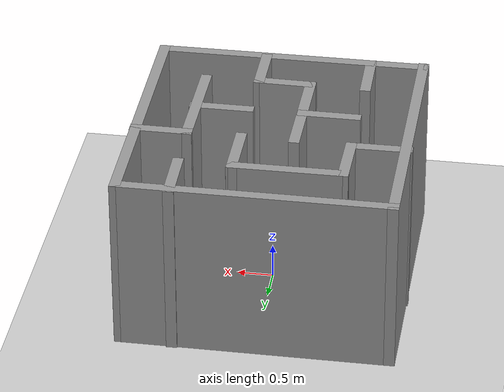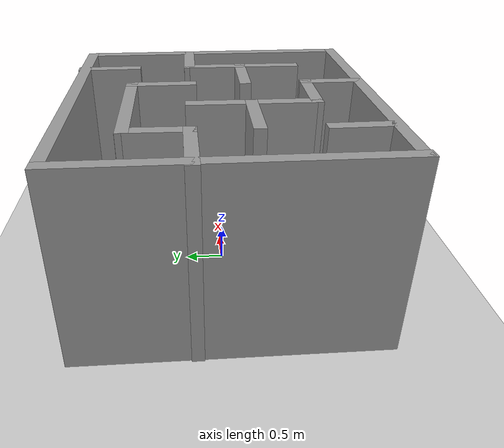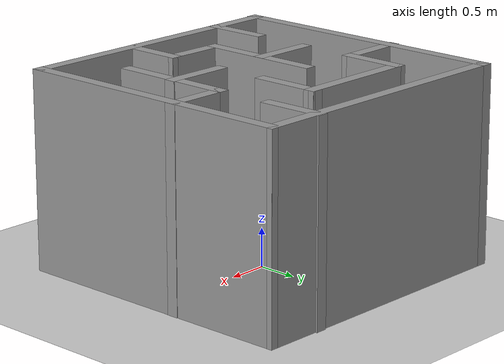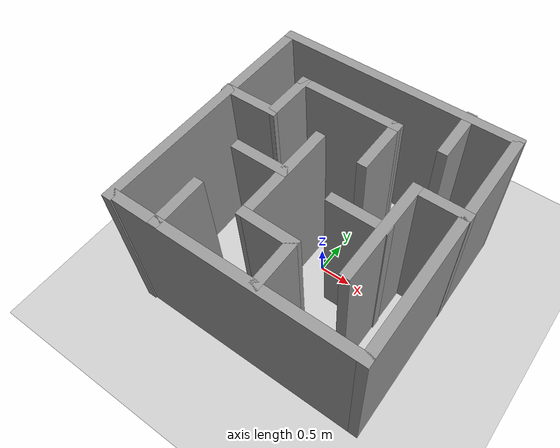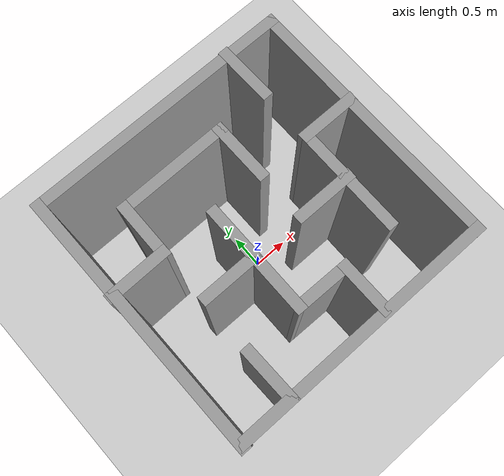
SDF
<sdf version="1.7">
 <world name="default">
  <light name="sun" type="directional">
   <pose>0 0 10 0 -0 0</pose>
   <diffuse>0.8 0.8 0.8 1</diffuse>
   <specular>0.2 0.2 0.2 1</specular>
   <attenuation>
    <range>1000</range>
    <constant>0.9</constant>
    <linear>0.01</linear>
    <quadratic>0.001</quadratic>
   </attenuation>
   <direction>-0.5 0.1 -0.9</direction>
   <spot><inner_angle>0</inner_angle><outer_angle>0</outer_angle><falloff>0</falloff></spot>
  </light>
  <model name="ground_plane">
   <static>1</static>
   <link name="link">
    <collision name="collision">
     <geometry><plane><normal>0 0 1</normal><size>100 100</size></plane></geometry>
     <surface><friction><ode><mu>100</mu><mu2>50</mu2></ode></friction></surface>
    </collision>
    <visual name="visual">
     <cast_shadows>0</cast_shadows>
     <geometry><plane><normal>0 0 1</normal><size>100 100</size></plane></geometry>
     <material>
      <script><uri>file://media/materials/scripts/gazebo.material</uri><name>Gazebo/Grey</name></script>
     </material>
    </visual>
   </link>
  </model>
  <gravity>0 0 -9.8</gravity>
  <magnetic_field>6e-06 2.3e-05 -4.2e-05</magnetic_field>
  <atmosphere type="adiabatic"/>
  <physics type="ode">
   <max_step_size>0.001</max_step_size>
   <real_time_factor>1</real_time_factor>
   <real_time_update_rate>1000</real_time_update_rate>
  </physics>
  <scene><ambient>0.4 0.4 0.4 1</ambient><background>0.7 0.7 0.7 1</background><shadows>1</shadows></scene>
  <audio><device>default</device></audio>
  <spherical_coordinates>
   <surface_model>EARTH_WGS84</surface_model>
   <latitude_deg>0</latitude_deg>
   <longitude_deg>0</longitude_deg>
   <elevation>0</elevation>
   <heading_deg>0</heading_deg>
  </spherical_coordinates>
  <model name="Mapa_reto">
   <pose>-0.025387 0.000589 0 0 -0 0</pose>
   <link name="Wall_10">
    <collision name="Wall_10_Collision">
     <geometry><box><size>0.86007 0.15 2.5</size></box></geometry>
     <pose>0 0 1.25 0 -0 0</pose>
    </collision>
    <visual name="Wall_10_Visual">
     <pose>0 0 1.25 0 -0 0</pose>
     <geometry><box><size>0.86007 0.15 2.5</size></box></geometry>
     <material>
      <script><uri>file://media/materials/scripts/gazebo.material</uri><name>Gazebo/Grey</name></script>
      <ambient>1 1 1 1</ambient>
     </material>
     <meta><layer>0</layer></meta>
    </visual>
    <pose>-1.08961 0.764411 0 0 -0 1.55671</pose>
   </link>
   <link name="Wall_11">
    <collision name="Wall_11_Collision">
     <geometry><box><size>1.64003 0.15 2.5</size></box></geometry>
     <pose>0 0 1.25 0 -0 0</pose>
    </collision>
    <visual name="Wall_11_Visual">
     <pose>0 0 1.25 0 -0 0</pose>
     <geometry><box><size>1.64003 0.15 2.5</size></box></geometry>
     <material>
      <script><uri>file://media/materials/scripts/gazebo.material</uri><name>Gazebo/Grey</name></script>
      <ambient>1 1 1 1</ambient>
     </material>
     <meta><layer>0</layer></meta>
    </visual>
    <pose>-0.339613 1.12441 0 0 -0 0.006711</pose>
   </link>
   <link name="Wall_14">
    <collision name="Wall_14_Collision">
     <geometry><box><size>0.810303 0.15 2.5</size></box></geometry>
     <pose>0 0 1.25 0 -0 0</pose>
    </collision>
    <visual name="Wall_14_Visual">
     <pose>0 0 1.25 0 -0 0</pose>
     <geometry><box><size>0.810303 0.15 2.5</size></box></geometry>
     <material>
      <script><uri>file://media/materials/scripts/gazebo.material</uri><name>Gazebo/Grey</name></script>
      <ambient>1 1 1 1</ambient>
     </material>
     <meta><layer>0</layer></meta>
    </visual>
    <pose>0.385387 -1.45059 0 0 -0 1.5708</pose>
   </link>
   <link name="Wall_15">
    <collision name="Wall_15_Collision">
     <geometry><box><size>0.870069 0.15 2.5</size></box></geometry>
     <pose>0 0 1.25 0 -0 0</pose>
    </collision>
    <visual name="Wall_15_Visual">
     <pose>0 0 1.25 0 -0 0</pose>
     <geometry><box><size>0.870069 0.15 2.5</size></box></geometry>
     <material>
      <script><uri>file://media/materials/scripts/gazebo.material</uri><name>Gazebo/Grey</name></script>
      <ambient>1 1 1 1</ambient>
     </material>
     <meta><layer>0</layer></meta>
    </visual>
    <pose>0.025387 -1.11559 0 0 -0 3.12771</pose>
   </link>
   <link name="Wall_16">
    <collision name="Wall_16_Collision">
     <geometry><box><size>1.64013 0.15 2.5</size></box></geometry>
     <pose>0 0 1.25 0 -0 0</pose>
    </collision>
    <visual name="Wall_16_Visual">
     <pose>0 0 1.25 0 -0 0</pose>
     <geometry><box><size>1.64013 0.15 2.5</size></box></geometry>
     <material>
      <script><uri>file://media/materials/scripts/gazebo.material</uri><name>Gazebo/Grey</name></script>
      <ambient>1 1 1 1</ambient>
     </material>
     <meta><layer>0</layer></meta>
    </visual>
    <pose>-0.329613 -0.365589 0 0 -0 1.56408</pose>
   </link>
   <link name="Wall_18">
    <collision name="Wall_18_Collision">
     <geometry><box><size>0.880068 0.15 2.5</size></box></geometry>
     <pose>0 0 1.25 0 -0 0</pose>
    </collision>
    <visual name="Wall_18_Visual">
     <pose>0 0 1.25 0 -0 0</pose>
     <geometry><box><size>0.880068 0.15 2.5</size></box></geometry>
     <material>
      <script><uri>file://media/materials/scripts/gazebo.material</uri><name>Gazebo/Grey</name></script>
      <ambient>1 1 1 1</ambient>
     </material>
     <meta><layer>0</layer></meta>
    </visual>
    <pose>-0.699613 -0.330589 0 0 -0 3.14159</pose>
   </link>
   <link name="Wall_2">
    <collision name="Wall_2_Collision">
     <geometry><box><size>3.81034 0.15 2.5</size></box></geometry>
     <pose>0 0 1.25 0 -0 0</pose>
    </collision>
    <visual name="Wall_2_Visual">
     <pose>0 0 1.25 0 -0 0</pose>
     <geometry><box><size>3.81034 0.15 2.5</size></box></geometry>
     <material>
      <script><uri>file://media/materials/scripts/gazebo.material</uri><name>Gazebo/Grey</name></script>
      <ambient>1 1 1 1</ambient>
     </material>
     <meta><layer>0</layer></meta>
    </visual>
    <pose>-1.83461 -0.010589 0 0 -0 1.5708</pose>
   </link>
   <link name="Wall_20">
    <collision name="Wall_20_Collision">
     <geometry><box><size>0.9006 0.15 2.5</size></box></geometry>
     <pose>0 0 1.25 0 -0 0</pose>
    </collision>
    <visual name="Wall_20_Visual">
     <pose>0 0 1.25 0 -0 0</pose>
     <geometry><box><size>0.9006 0.15 2.5</size></box></geometry>
     <material>
      <script><uri>file://media/materials/scripts/gazebo.material</uri><name>Gazebo/Grey</name></script>
      <ambient>1 1 1 1</ambient>
     </material>
     <meta><layer>0</layer></meta>
    </visual>
    <pose>0.405387 0.754411 0 0 -0 -1.5708</pose>
   </link>
   <link name="Wall_22">
    <collision name="Wall_22_Collision">
     <geometry><box><size>0.850643 0.15 2.5</size></box></geometry>
     <pose>0 0 1.25 0 -0 0</pose>
    </collision>
    <visual name="Wall_22_Visual">
     <pose>0 0 1.25 0 -0 0</pose>
     <geometry><box><size>0.850643 0.15 2.5</size></box></geometry>
     <material>
      <script><uri>file://media/materials/scripts/gazebo.material</uri><name>Gazebo/Grey</name></script>
      <ambient>1 1 1 1</ambient>
     </material>
     <meta><layer>0</layer></meta>
    </visual>
    <pose>1.13039 1.48941 0 0 -0 -1.55651</pose>
   </link>
   <link name="Wall_24">
    <collision name="Wall_24_Collision">
     <geometry><box><size>0.86 0.15 2.5</size></box></geometry>
     <pose>0 0 1.25 0 -0 0</pose>
    </collision>
    <visual name="Wall_24_Visual">
     <pose>0 0 1.25 0 -0 0</pose>
     <geometry><box><size>0.86 0.15 2.5</size></box></geometry>
     <material>
      <script><uri>file://media/materials/scripts/gazebo.material</uri><name>Gazebo/Grey</name></script>
      <ambient>1 1 1 1</ambient>
     </material>
     <meta><layer>0</layer></meta>
    </visual>
    <pose>1.50039 0.379411 0 0 -0 3.14159</pose>
   </link>
   <link name="Wall_26">
    <collision name="Wall_26_Collision">
     <geometry><box><size>1.61086 0.15 2.5</size></box></geometry>
     <pose>0 0 1.25 0 -0 0</pose>
    </collision>
    <visual name="Wall_26_Visual">
     <pose>0 0 1.25 0 -0 0</pose>
     <geometry><box><size>1.61086 0.15 2.5</size></box></geometry>
     <material>
      <script><uri>file://media/materials/scripts/gazebo.material</uri><name>Gazebo/Grey</name></script>
      <ambient>1 1 1 1</ambient>
     </material>
     <meta><layer>0</layer></meta>
    </visual>
    <pose>1.14039 -0.350589 0 0 -0 -1.57765</pose>
   </link>
   <link name="Wall_28">
    <collision name="Wall_28_Collision">
     <geometry><box><size>0.89027 0.15 2.5</size></box></geometry>
     <pose>0 0 1.25 0 -0 0</pose>
    </collision>
    <visual name="Wall_28_Visual">
     <pose>0 0 1.25 0 -0 0</pose>
     <geometry><box><size>0.89027 0.15 2.5</size></box></geometry>
     <material>
      <script><uri>file://media/materials/scripts/gazebo.material</uri><name>Gazebo/Grey</name></script>
      <ambient>1 1 1 1</ambient>
     </material>
     <meta><layer>0</layer></meta>
    </visual>
    <pose>0.785387 -0.330589 0 0 -0 3.14159</pose>
   </link>
   <link name="Wall_3">
    <collision name="Wall_3_Collision">
     <geometry><box><size>3.83 0.15 2.5</size></box></geometry>
     <pose>0 0 1.25 0 -0 0</pose>
    </collision>
    <visual name="Wall_3_Visual">
     <pose>0 0 1.25 0 -0 0</pose>
     <geometry><box><size>3.83 0.15 2.5</size></box></geometry>
     <material>
      <script><uri>file://media/materials/scripts/gazebo.material</uri><name>Gazebo/Grey</name></script>
      <ambient>1 1 1 1</ambient>
     </material>
     <meta><layer>0</layer></meta>
    </visual>
    <pose>0.005387 1.81941 0 0 -0 0</pose>
   </link>
   <link name="Wall_4">
    <collision name="Wall_4_Collision">
     <geometry><box><size>3.78012 0.15 2.5</size></box></geometry>
     <pose>0 0 1.25 0 -0 0</pose>
    </collision>
    <visual name="Wall_4_Visual">
     <pose>0 0 1.25 0 -0 0</pose>
     <geometry><box><size>3.78012 0.15 2.5</size></box></geometry>
     <material>
      <script><uri>file://media/materials/scripts/gazebo.material</uri><name>Gazebo/Grey</name></script>
      <ambient>1 1 1 1</ambient>
     </material>
     <meta><layer>0</layer></meta>
    </visual>
    <pose>1.85039 0.004411 0 0 -0 -1.56804</pose>
   </link>
   <link name="Wall_5">
    <collision name="Wall_5_Collision">
     <geometry><box><size>3.82001 0.15 2.5</size></box></geometry>
     <pose>0 0 1.25 0 -0 0</pose>
    </collision>
    <visual name="Wall_5_Visual">
     <pose>0 0 1.25 0 -0 0</pose>
     <geometry><box><size>3.82001 0.15 2.5</size></box></geometry>
     <material>
      <script><uri>file://media/materials/scripts/gazebo.material</uri><name>Gazebo/Grey</name></script>
      <ambient>1 1 1 1</ambient>
     </material>
     <meta><layer>0</layer></meta>
    </visual>
    <pose>0.020387 -1.81559 0 0 -0 -3.13887</pose>
   </link>
   <link name="Wall_7">
    <collision name="Wall_7_Collision">
     <geometry><box><size>0.840072 0.15 2.5</size></box></geometry>
     <pose>0 0 1.25 0 -0 0</pose>
    </collision>
    <visual name="Wall_7_Visual">
     <pose>0 0 1.25 0 -0 0</pose>
     <geometry><box><size>0.840072 0.15 2.5</size></box></geometry>
     <material>
      <script><uri>file://media/materials/scripts/gazebo.material</uri><name>Gazebo/Grey</name></script>
      <ambient>1 1 1 1</ambient>
     </material>
     <meta><layer>0</layer></meta>
    </visual>
    <pose>-1.09961 -1.46559 0 0 -0 1.58529</pose>
   </link>
   <link name="Wall_9">
    <collision name="Wall_9_Collision">
     <geometry><box><size>0.910066 0.15 2.5</size></box></geometry>
     <pose>0 0 1.25 0 -0 0</pose>
    </collision>
    <visual name="Wall_9_Visual">
     <pose>0 0 1.25 0 -0 0</pose>
     <geometry><box><size>0.910066 0.15 2.5</size></box></geometry>
     <material>
      <script><uri>file://media/materials/scripts/gazebo.material</uri><name>Gazebo/Grey</name></script>
      <ambient>1 1 1 1</ambient>
     </material>
     <meta><layer>0</layer></meta>
    </visual>
    <pose>-1.47461 0.404411 0 0 -0 0.013157</pose>
   </link>
   <static>1</static>
  </model>
 </world>
</sdf>
